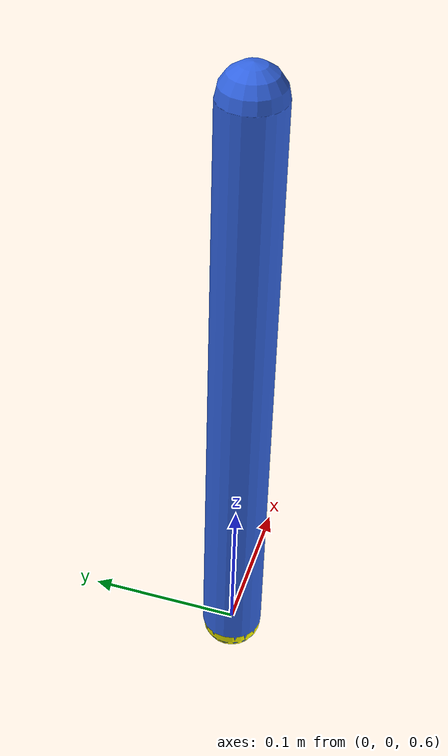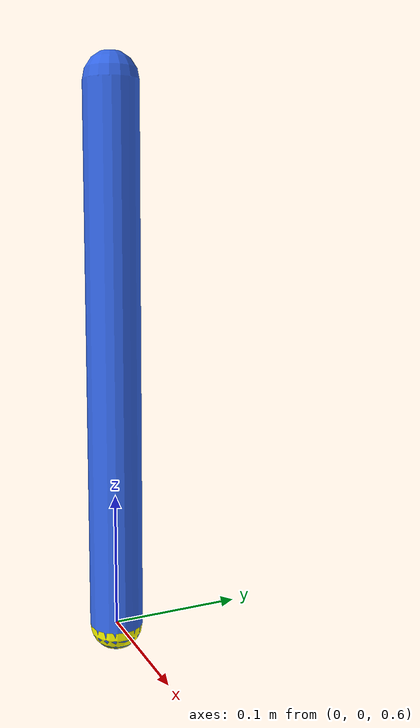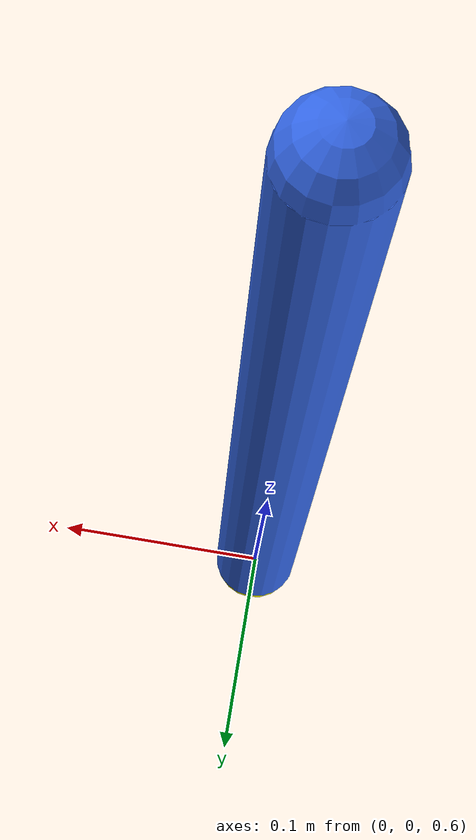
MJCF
<mujoco>
  <worldbody>
    <light pos="0 -1 2"/>
    <body name="pendulum" pos="0 0 1">
      <joint name="hinge" type="hinge" axis="0 1 0" damping="0.05"/>
      <geom type="capsule" fromto="0 0 0 0 0 -0.4" size="0.02" rgba="0.2 0.4 0.9 1"/>
      <site name="tip" pos="0 0 -0.4" size="0.02" rgba="1 1 0 1"/>
    </body>
  </worldbody>

  <actuator>
    <motor name="motor" joint="hinge" gear="2" ctrllimited="true" ctrlrange="-1 1"/>
  </actuator>

  <sensor>
    <jointpos joint="hinge"/>
    <jointvel joint="hinge"/>
  </sensor>
</mujoco>
